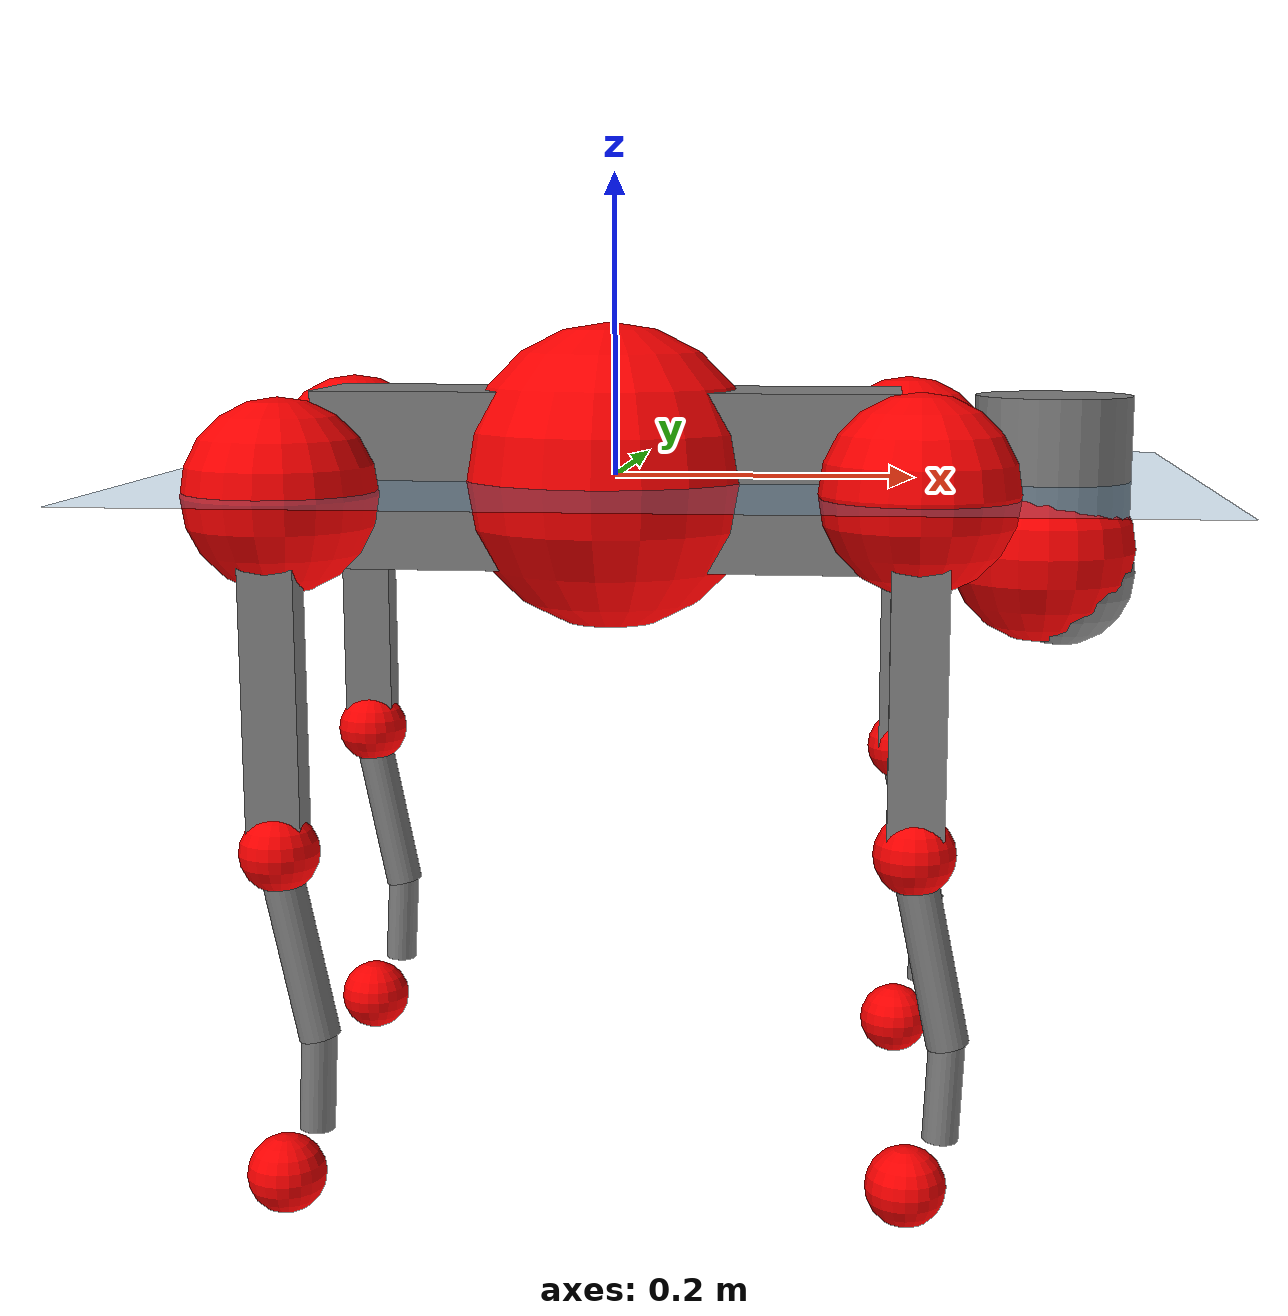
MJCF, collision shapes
<mujoco model="go2">
  <compiler angle="radian" assetdir="assets" balanceinertia="true" inertiafromgeom="false"/>

  <option timestep="0.005" density="1.2" viscosity="2e-05"/>

  <size nkey="1"/>

  <visual>
    <quality shadowsize="8192"/>
    <map shadowclip="0.5"/>
  </visual>

  <default>
    <default class="/">
      <geom contype="0" conaffinity="0" group="1" solref="-1000 -80"/>
      <site size="0.01 0.005 0.005" group="5"/>
      <general forcelimited="true" biastype="affine" gainprm="20" biasprm="0 -20 -0.5"/>
      <default class="go2">
        <joint armature="0.01" damping="0.01" frictionloss="0.2"/>
        <geom condim="1" margin="0.001"/>
        <default class="visual">
          <geom type="mesh" group="2"/>
        </default>
        <default class="collision">
          <geom group="3"/>
          <default class="foot">
            <geom size="0.022 0 0" condim="6" priority="1" friction="0.8 0.02 0.01" solimp="0.015 1 0.022"/>
          </default>
        </default>
        <default class="reward_collision_sphere">
          <geom group="5" rgba="1 0 0 1"/>
        </default>
      </default>
    </default>
  </default>

  <asset>
    <texture type="skybox" colorspace="auto" name="//unnamed_texture_0" builtin="gradient" rgb1="0.95 0.95 0.95" rgb2="0.95 0.95 0.95" width="100" height="600"/>
    <texture type="2d" colorspace="auto" name="texplane" builtin="checker" rgb1="0.345 0.575 0.748" rgb2="0.345 0.575 0.748" markrgb="1 1 1" width="512" height="512"/>
    <material name="MatPlane" class="/" texture="texplane" texuniform="true" texrepeat="2 2" specular="0.9"/>
    <material name="metal" class="/" rgba="0.9 0.95 0.95 1"/>
    <material name="black" class="/" rgba="0 0 0 1"/>
    <material name="white" class="/"/>
    <material name="gray" class="/" rgba="0.671705 0.692426 0.77427 1"/>
    <mesh name="base_0" class="/" file="base_0.obj"/>
    <mesh name="base_1" class="/" file="base_1.obj"/>
    <mesh name="base_2" class="/" file="base_2.obj"/>
    <mesh name="base_3" class="/" file="base_3.obj"/>
    <mesh name="base_4" class="/" file="base_4.obj"/>
    <mesh name="hip_0" class="/" file="hip_0.obj"/>
    <mesh name="hip_1" class="/" file="hip_1.obj"/>
    <mesh name="thigh_0" class="/" file="thigh_0.obj"/>
    <mesh name="thigh_1" class="/" file="thigh_1.obj"/>
    <mesh name="thigh_mirror_0" class="/" file="thigh_mirror_0.obj"/>
    <mesh name="thigh_mirror_1" class="/" file="thigh_mirror_1.obj"/>
    <mesh name="calf_0" class="/" file="calf_0.obj"/>
    <mesh name="calf_1" class="/" file="calf_1.obj"/>
    <mesh name="calf_mirror_0" class="/" file="calf_mirror_0.obj"/>
    <mesh name="calf_mirror_1" class="/" file="calf_mirror_1.obj"/>
    <mesh name="foot" class="/" file="foot.obj"/>
  </asset>

  <worldbody>
    <geom name="floor" class="/" size="100 100 0.125" type="plane" group="0" material="MatPlane"/>
    <light name="toplight_shadow" class="/" pos="0 0 5" dir="0.0990148 0.0990148 -0.990148" type="directional" ambient="0.04 0.04 0.04" diffuse="0.55 0.55 0.55" specular="0.12 0.12 0.12"/>
    <light name="toplight_fill" class="/" pos="0 0 5" dir="0.0990148 0.0990148 -0.990148" type="directional" castshadow="false" ambient="0.04 0.04 0.04" diffuse="0.3 0.3 0.3" specular="0.08 0.08 0.08"/>
    <body name="trunk" childclass="go2" pos="-0.00351326 0.00173738 -0.00131868" quat="0.999999 0.00101256 0.000601263 0.000297208">
      <inertial pos="0.0221792 -0.00180927 -0.00558174" quat="0.00201919 0.714292 -0.00235199 0.699841" mass="7.90663" diaginertia="0.118665 0.122219 0.0267902"/>
      <joint name="//unnamed_joint_0" type="free" armature="0" damping="0" frictionloss="0"/>
      <geom name="//unnamed_geom_1" class="visual" material="black" mesh="base_0"/>
      <geom name="//unnamed_geom_2" class="visual" material="black" mesh="base_1"/>
      <geom name="//unnamed_geom_3" class="visual" material="black" mesh="base_2"/>
      <geom name="//unnamed_geom_4" class="visual" material="white" mesh="base_3"/>
      <geom name="//unnamed_geom_5" class="visual" material="gray" mesh="base_4"/>
      <geom name="trunk_1" class="collision" size="0.195026 0.0484714 0.0590989" type="box"/>
      <geom name="trunk_2" class="collision" size="0.0518411 0.046657" pos="0.295524 0 0.0102075" type="cylinder"/>
      <geom name="trunk_3" class="collision" size="0.0487307" pos="0.30382 0 -0.0612453"/>
      <geom name="//unnamed_geom_9" class="reward_collision_sphere" size="0.103682"/>
      <geom name="//unnamed_geom_10" class="reward_collision_sphere" size="0.0622093" pos="0.29034 0 -0.045934"/>
      <site name="imu" pos="-0.0147344 -0.0107353 0.0676973" size="0.0103682"/>
      <camera name="track" pos="0 -2.10557 0" quat="0.707107 0.707107 0 0" mode="trackcom"/>
      <camera name="ego_camera" pos="0.323521 0 0.045934" quat="-0.5 -0.5 0.5 0.5"/>
      <body name="FL_hip" pos="0.201352 0.0507111 0.000584576" quat="0.999999 -0.00102818 7.6486e-05 -0.00101546">
        <inertial pos="-0.00130803 0.00062632 -0.000374774" quat="0.495232 0.502111 0.503518 0.499099" mass="0.728175" diaginertia="0.00102125 0.0007781 0.000515374"/>
        <joint name="FL_hip_joint" pos="0 0 0" axis="0.999505 -0.0120001 -0.0290936" stiffness="0.0235375" range="-1.07626 1.0458" armature="0.0128496" damping="0.0165868" frictionloss="0.21751"/>
        <geom name="//unnamed_geom_11" class="visual" material="metal" mesh="hip_0"/>
        <geom name="//unnamed_geom_12" class="visual" material="gray" mesh="hip_1"/>
        <geom name="//unnamed_geom_13" class="collision" size="0.0476938 0.0207364" pos="0 0.0842228 0" quat="0.707107 0.707107 0 0" type="cylinder"/>
        <geom name="//unnamed_geom_14" class="reward_collision_sphere" size="0.0622093" pos="0 0.0736949 0"/>
        <body name="FL_thigh" pos="0.000334543 0.101774 0.000376304" quat="1 0.000146879 -0.000510643 -0.00036085">
          <inertial pos="-0.00564124 -0.0235659 -0.0279951" quat="0.830422 0.0869059 -0.0151033 0.550107" mass="1.2641" diaginertia="0.00696652 0.00737398 0.000946664"/>
          <joint name="FL_thigh_joint" pos="0 0 0" axis="0.00152883 0.999999 -0.000116416" stiffness="0.00525632" range="-1.54001 3.49066" armature="0.00893239" damping="0.00526463" frictionloss="0.205088"/>
          <geom name="//unnamed_geom_15" class="visual" material="metal" mesh="thigh_0"/>
          <geom name="//unnamed_geom_16" class="visual" material="gray" mesh="thigh_1"/>
          <geom name="//unnamed_geom_17" class="collision" size="0.110422 0.0127011 0.017626" pos="0 0 -0.10871" quat="0.707107 0 0.707107 0" type="box"/>
          <body name="FL_calf" pos="0.000117705 0.00555732 -0.218689" quat="1 -0.000176852 -9.84358e-06 -0.000510593">
            <inertial pos="0.0074548 -0.00294034 -0.144743" quat="0.715475 0.0172824 -0.0174374 0.698207" mass="0.26862" diaginertia="0.00182286 0.00187268 6.08665e-05"/>
            <joint name="FL_calf_joint" pos="0 0 0" axis="-0.0047138 0.999988 -0.00132893" stiffness="0.0120653" range="-2.73557 -0.880716" armature="0.00990208" damping="0.0137685" frictionloss="0.225199"/>
            <geom name="//unnamed_geom_18" class="visual" material="gray" mesh="calf_0"/>
            <geom name="//unnamed_geom_19" class="visual" material="black" mesh="calf_1"/>
            <geom name="FL_calf0" class="collision" size="0.0124419 0.0622093" pos="0.00829542 0 -0.0612453" quat="0.994493 0 -0.104807 0" type="cylinder"/>
            <geom name="//unnamed_geom_21" class="collision" size="0.011405 0.0336967" pos="0.0207385 0 -0.151072" quat="0.999688 0 0.0249974 0" type="cylinder"/>
            <geom name="//unnamed_geom_22" class="visual" pos="0 0 -0.217421" quat="1 0 0 0" material="black" mesh="foot"/>
            <geom name="FL_foot" class="foot" size="0.0213915" pos="-0.00207385 0 -0.217421"/>
            <geom name="//unnamed_geom_24" class="reward_collision_sphere" size="0.0259206"/>
            <geom name="//unnamed_geom_25" class="reward_collision_sphere" size="0.0259206" pos="-0.00207385 0 -0.217421"/>
            <site name="FL_foot" class="foot" pos="-0.00207385 0 -0.217421" size="0.0103682"/>
          </body>
        </body>
      </body>
      <body name="FR_hip" pos="0.205974 -0.0542984 0.00314165" quat="1 -0.000264147 -0.000626195 -0.00028751">
        <inertial pos="-0.0107832 0.000297244 0.00455031" quat="0.498019 0.505996 0.499339 0.496594" mass="0.731375" diaginertia="0.000985076 0.000731431 0.000498877"/>
        <joint name="FR_hip_joint" pos="0 0 0" axis="0.999858 -0.0128087 -0.0109411" stiffness="0.0137705" range="-0.963593 1.08683" armature="0.00995626" damping="0.00308916" frictionloss="0.234927"/>
        <geom name="//unnamed_geom_26" class="visual" pos="0 2.79034e-10 1.19683e-08" quat="4.63268e-05 1 0 0" material="metal" mesh="hip_0"/>
        <geom name="//unnamed_geom_27" class="visual" pos="0 4.52347e-10 -2.96023e-08" quat="4.63268e-05 1 0 0" material="gray" mesh="hip_1"/>
        <geom name="//unnamed_geom_28" class="collision" size="0.0476938 0.0207364" pos="0 -0.0842228 0" quat="0.707107 0.707107 0 0" type="cylinder"/>
        <geom name="//unnamed_geom_29" class="reward_collision_sphere" size="0.0622093" pos="0 -0.0736949 0"/>
        <body name="FR_thigh" pos="0.00110382 -0.102988 0.000192984" quat="1 -4.38199e-06 1.20287e-06 -1.59379e-05">
          <inertial pos="-0.00466349 0.0172792 -0.031044" quat="0.552666 -0.0193933 0.0855156 0.828777" mass="1.32123" diaginertia="0.0070979 0.00797658 0.000995829"/>
          <joint name="FR_thigh_joint" pos="0 0 0" axis="-0.00724567 -0.999972 -0.00191254" stiffness="0.00716357" range="-3.53274 1.5887" armature="0.00905202" damping="0.0207291" frictionloss="0.23268"/>
          <geom name="//unnamed_geom_30" class="visual" material="metal" mesh="thigh_mirror_0"/>
          <geom name="//unnamed_geom_31" class="visual" material="gray" mesh="thigh_mirror_1"/>
          <geom name="//unnamed_geom_32" class="collision" size="0.110422 0.0127011 0.017626" pos="0 0 -0.10871" quat="0.707107 0 0.707107 0" type="box"/>
          <body name="FR_calf" pos="-0.000191059 0.00178049 -0.219983" quat="0.999997 -7.21433e-05 -0.00126947 0.0023016">
            <inertial pos="0.000152986 0.00114126 -0.146955" quat="0.708244 -0.0137123 -0.00175088 0.705832" mass="0.270262" diaginertia="0.00175306 0.00177082 5.34677e-05"/>
            <joint name="FR_calf_joint" pos="0 0 0" axis="0.00644563 -0.999978 -0.00169444" range="0.928589 2.69851" armature="0.0115739" damping="0" frictionloss="0.173242"/>
            <geom name="//unnamed_geom_33" class="visual" material="gray" mesh="calf_mirror_0"/>
            <geom name="//unnamed_geom_34" class="visual" material="black" mesh="calf_mirror_1"/>
            <geom name="FR_calf0" class="collision" size="0.0134787 0.0622093" pos="0.0103693 0 -0.0612453" quat="0.995004 0 -0.0998334 0" type="cylinder"/>
            <geom name="//unnamed_geom_36" class="collision" size="0.011405 0.0336967" pos="0.0207385 0 -0.151072" quat="0.999688 0 0.0249974 0" type="cylinder"/>
            <geom name="//unnamed_geom_37" class="visual" pos="0 0 -0.217421" quat="1 0 0 0" material="black" mesh="foot"/>
            <geom name="FR_foot" class="foot" size="0.0209303" pos="-0.00207385 0 -0.217421"/>
            <geom name="//unnamed_geom_39" class="reward_collision_sphere" size="0.0259206"/>
            <geom name="//unnamed_geom_40" class="reward_collision_sphere" size="0.0259206" pos="-0.00207385 0 -0.217421"/>
            <site name="FR_foot" class="foot" pos="-0.00207385 0 -0.217421" size="0.0103682"/>
          </body>
        </body>
      </body>
      <body name="RL_hip" pos="-0.207239 0.0516351 -0.000849428" quat="1 0.000571443 -8.27568e-05 0.00049606">
        <inertial pos="0.00106924 0.00800831 -0.000829222" quat="0.514798 0.498335 0.484683 0.501725" mass="0.753668" diaginertia="0.00103861 0.000775219 0.000556925"/>
        <joint name="RL_hip_joint" pos="0 0 0" axis="-0.999982 -0.00330885 -0.00500102" stiffness="0.00109343" range="-1.06647 1.084" armature="0.0102555" damping="0" frictionloss="0.186291"/>
        <geom name="//unnamed_geom_41" class="visual" pos="-1.40889e-10 0 -2.76175e-08" quat="4.63268e-05 0 1 0" material="metal" mesh="hip_0"/>
        <geom name="//unnamed_geom_42" class="visual" pos="-2.28398e-10 0 -2.44928e-08" quat="4.63268e-05 0 1 0" material="gray" mesh="hip_1"/>
        <geom name="//unnamed_geom_43" class="collision" size="0.0476938 0.0207364" pos="0 0.0842228 0" quat="0.707107 0.707107 0 0" type="cylinder"/>
        <geom name="//unnamed_geom_44" class="reward_collision_sphere" size="0.0622093" pos="0 0.0736949 0"/>
        <body name="RL_thigh" pos="0.000305057 0.101723 0.00152391" quat="1 0.000853657 0.000215527 0.000358283">
          <inertial pos="-0.00150996 -0.0283805 -0.0325092" quat="0.825243 0.0849922 -0.0255041 0.557763" mass="1.30213" diaginertia="0.00708781 0.007537 0.00102688"/>
          <joint name="RL_thigh_joint" pos="0 0 0" axis="-0.0152982 0.999829 0.0104041" stiffness="0.0126802" range="-0.541782 4.53565" armature="0.00815036" damping="0.0134065" frictionloss="0.178907"/>
          <geom name="//unnamed_geom_45" class="visual" material="metal" mesh="thigh_0"/>
          <geom name="//unnamed_geom_46" class="visual" material="gray" mesh="thigh_1"/>
          <geom name="//unnamed_geom_47" class="collision" size="0.110422 0.0127011 0.017626" pos="0 0 -0.10871" quat="0.707107 0 0.707107 0" type="box"/>
          <body name="RL_calf" pos="0.00062369 -0.00271571 -0.212157" quat="0.999996 0.000414456 0.00282191 -0.00029176">
            <inertial pos="0.00800302 -0.000291356 -0.150833" quat="0.710617 0.00377962 -0.00337105 0.70356" mass="0.27946" diaginertia="0.00176682 0.00184573 5.84585e-05"/>
            <joint name="RL_calf_joint" pos="0 0 0" axis="0.00658605 0.999938 -0.00902694" range="-2.67795 -0.82677" armature="0.0115998" damping="0" frictionloss="0.227772"/>
            <geom name="//unnamed_geom_48" class="visual" material="gray" mesh="calf_0"/>
            <geom name="//unnamed_geom_49" class="visual" material="black" mesh="calf_1"/>
            <geom name="RL_calf0" class="collision" size="0.0134787 0.0622093" pos="0.0103693 0 -0.0612453" quat="0.995004 0 -0.0998334 0" type="cylinder"/>
            <geom name="//unnamed_geom_51" class="collision" size="0.011405 0.0336967" pos="0.0207385 0 -0.151072" quat="0.999688 0 0.0249974 0" type="cylinder"/>
            <geom name="//unnamed_geom_52" class="visual" pos="0 0 -0.217421" quat="1 0 0 0" material="black" mesh="foot"/>
            <geom name="RL_foot" class="foot" size="0.0250119" pos="-0.00207385 0 -0.217421"/>
            <geom name="//unnamed_geom_54" class="reward_collision_sphere" size="0.0259206"/>
            <geom name="//unnamed_geom_55" class="reward_collision_sphere" size="0.0259206" pos="-0.00207385 0 -0.217421"/>
            <site name="RL_foot" class="foot" pos="-0.00207385 0 -0.217421" size="0.0103682"/>
          </body>
        </body>
      </body>
      <body name="RR_hip" pos="-0.195532 -0.0471306 -0.00265696" quat="0.999999 0.000695842 0.000526717 0.000542029">
        <inertial pos="0.00436137 -0.00130751 -0.000700224" quat="0.485457 0.49414 0.517078 0.502781" mass="0.736621" diaginertia="0.00103078 0.000742619 0.00051437"/>
        <joint name="RR_hip_joint" pos="0 0 0" axis="-0.999669 0.0246886 0.00716847" range="-1.05045 1.09314" armature="0.00945482" damping="0.0133592" frictionloss="0.205962"/>
        <geom name="//unnamed_geom_56" class="visual" pos="1.41438e-10 2.79034e-10 -3.95859e-08" quat="2.14617e-09 4.63268e-05 4.63268e-05 -1" material="metal" mesh="hip_0"/>
        <geom name="//unnamed_geom_57" class="visual" pos="2.2704e-10 4.52347e-10 5.10945e-09" quat="2.14617e-09 4.63268e-05 4.63268e-05 -1" material="gray" mesh="hip_1"/>
        <geom name="//unnamed_geom_58" class="collision" size="0.0476938 0.0207364" pos="0 -0.0842228 0" quat="0.707107 0.707107 0 0" type="cylinder"/>
        <geom name="//unnamed_geom_59" class="reward_collision_sphere" size="0.0622093" pos="0 -0.0736949 0"/>
        <body name="RR_thigh" pos="-0.000109986 -0.103004 -0.00412231" quat="1 -0.000247711 -0.000351508 0.000873033">
          <inertial pos="-0.00131268 0.0224215 -0.0312049" quat="0.538016 -0.0406196 0.0723148 0.838844" mass="1.23779" diaginertia="0.00703348 0.00726967 0.000896019"/>
          <joint name="RR_thigh_joint" pos="0 0 0" axis="0.0160539 -0.999856 0.00547895" stiffness="0.00617761" range="-4.55133 0.562763" armature="0.00909875" damping="0.0246386" frictionloss="0.198215"/>
          <geom name="//unnamed_geom_60" class="visual" material="metal" mesh="thigh_mirror_0"/>
          <geom name="//unnamed_geom_61" class="visual" material="gray" mesh="thigh_mirror_1"/>
          <geom name="//unnamed_geom_62" class="collision" size="0.110422 0.0127011 0.017626" pos="0 0 -0.10871" quat="0.707107 0 0.707107 0" type="box"/>
          <body name="RR_calf" pos="0.000929137 -0.00190779 -0.220347" quat="1 0.000232758 -0.000179852 -2.32188e-05">
            <inertial pos="0.00986607 0.00593772 -0.148924" quat="0.706299 -0.00367382 0.00520368 0.707885" mass="0.25414" diaginertia="0.00176335 0.00178176 5.71823e-05"/>
            <joint name="RR_calf_joint" pos="0 0 0" axis="0.000474132 -0.999998 0.00192596" range="0.79908 2.63268" armature="0.0103774" damping="0.0202295" frictionloss="0.158273"/>
            <geom name="//unnamed_geom_63" class="visual" material="gray" mesh="calf_mirror_0"/>
            <geom name="//unnamed_geom_64" class="visual" material="black" mesh="calf_mirror_1"/>
            <geom name="RR_calf0" class="collision" size="0.0134787 0.0622093" pos="0.0103693 0 -0.0612453" quat="0.995004 0 -0.0998334 0" type="cylinder"/>
            <geom name="//unnamed_geom_66" class="collision" size="0.011405 0.0336967" pos="0.0207385 0 -0.151072" quat="0.999688 0 0.0249974 0" type="cylinder"/>
            <geom name="//unnamed_geom_67" class="visual" pos="0 0 -0.217421" quat="1 0 0 0" material="black" mesh="foot"/>
            <geom name="RR_foot" class="foot" size="0.0185958" pos="-0.00207385 0 -0.217421"/>
            <geom name="//unnamed_geom_69" class="reward_collision_sphere" size="0.0259206"/>
            <geom name="//unnamed_geom_70" class="reward_collision_sphere" size="0.0259206" pos="-0.00207385 0 -0.217421"/>
            <site name="RR_foot" class="foot" pos="-0.00207385 0 -0.217421" size="0.0103682"/>
          </body>
        </body>
      </body>
    </body>
  </worldbody>

  <contact>
    <pair class="/" geom1="floor" geom2="FL_foot" name="//unnamed_contact_0"/>
    <pair class="/" geom1="floor" geom2="FR_foot" name="//unnamed_contact_1"/>
    <pair class="/" geom1="floor" geom2="RL_foot" name="//unnamed_contact_2"/>
    <pair class="/" geom1="floor" geom2="RR_foot" name="//unnamed_contact_3"/>
  </contact>

  <actuator>
    <general name="FL_hip" class="/" joint="FL_hip_joint" forcerange="-24.2274 24.2274" gainprm="20.4878" biasprm="0 -20.4878 -0.547413"/>
    <general name="FL_thigh" class="/" joint="FL_thigh_joint" forcerange="-27.0853 27.0853" gainprm="20.4878" biasprm="0 -20.4878 -0.547413"/>
    <general name="FL_calf" class="/" joint="FL_calf_joint" forcerange="-49.394 49.394" gainprm="20.4878" biasprm="0 -20.4878 -0.547413"/>
    <general name="FR_hip" class="/" joint="FR_hip_joint" forcerange="-24.8571 24.8571" gainprm="20.4878" biasprm="0 -20.4878 -0.547413"/>
    <general name="FR_thigh" class="/" joint="FR_thigh_joint" forcerange="-26.2377 26.2377" gainprm="20.4878" biasprm="0 -20.4878 -0.547413"/>
    <general name="FR_calf" class="/" joint="FR_calf_joint" forcerange="-46.2933 46.2933" gainprm="20.4878" biasprm="0 -20.4878 -0.547413"/>
    <general name="RL_hip" class="/" joint="RL_hip_joint" forcerange="-24.8717 24.8717" gainprm="20.4878" biasprm="0 -20.4878 -0.547413"/>
    <general name="RL_thigh" class="/" joint="RL_thigh_joint" forcerange="-24.305 24.305" gainprm="20.4878" biasprm="0 -20.4878 -0.547413"/>
    <general name="RL_calf" class="/" joint="RL_calf_joint" forcerange="-46.166 46.166" gainprm="20.4878" biasprm="0 -20.4878 -0.547413"/>
    <general name="RR_hip" class="/" joint="RR_hip_joint" forcerange="-23.5885 23.5885" gainprm="20.4878" biasprm="0 -20.4878 -0.547413"/>
    <general name="RR_thigh" class="/" joint="RR_thigh_joint" forcerange="-26.6066 26.6066" gainprm="20.4878" biasprm="0 -20.4878 -0.547413"/>
    <general name="RR_calf" class="/" joint="RR_calf_joint" forcerange="-57.2777 57.2777" gainprm="20.4878" biasprm="0 -20.4878 -0.547413"/>
  </actuator>

  <sensor>
    <gyro site="imu" name="imu_angular_velocity"/>
    <velocimeter site="imu" name="imu_linear_velocity"/>
    <framelinvel objtype="site" objname="FL_foot" name="FL_foot_global_linear_velocity"/>
    <framelinvel objtype="site" objname="FR_foot" name="FR_foot_global_linear_velocity"/>
    <framelinvel objtype="site" objname="RL_foot" name="RL_foot_global_linear_velocity"/>
    <framelinvel objtype="site" objname="RR_foot" name="RR_foot_global_linear_velocity"/>
  </sensor>

  <keyframe>
    <key name="home" qpos="0 0 0.325 1 0 0 0 0.1 0.8 -1.5 -0.1 -0.8 1.5 -0.1 0.8 -1.5 0.1 -0.8 1.5"/>
  </keyframe>
</mujoco>
